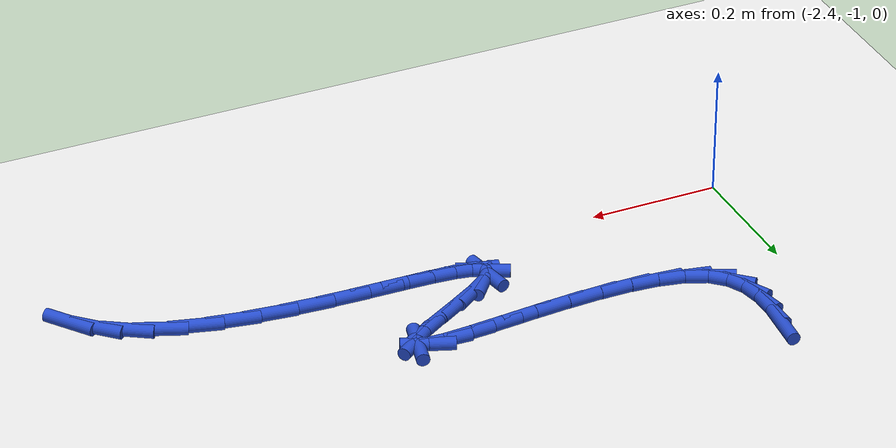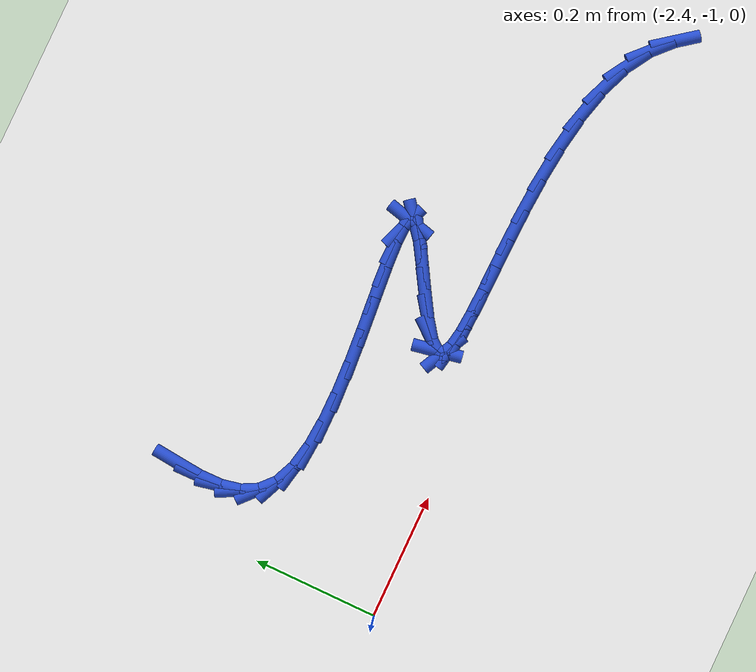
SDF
<sdf version="1.6">
 <world name="default">
  <model name="ground_plane">
   <static>1</static>
   <link name="link">
    <collision name="collision">
     <geometry><plane><normal>0 0 1</normal><size>100 100</size></plane></geometry>
     <surface><friction><ode><mu>100</mu><mu2>50</mu2></ode></friction></surface>
    </collision>
    <visual name="visual">
     <cast_shadows>0</cast_shadows>
     <geometry><plane><normal>0 0 1</normal><size>100 100</size></plane></geometry>
     <material>
      <script><uri>file://media/materials/scripts/gazebo.material</uri><name>Gazebo/WhiteGlow</name></script>
     </material>
    </visual>
   </link>
  </model>
  <model name="line">
   <link name="link_135">
    <pose>-2.313332444280192 -0.624526575835953 0.01 0 1.57 1.4715285721684925</pose>
    <collision name="collision">
     <geometry><cylinder><radius>0.01</radius><length>0.08</length></cylinder></geometry>
    </collision>
    <visual name="visual">
     <material>
      <script><name>Gazebo/Blue</name><uri>file://media/materials/scripts/gazebo.material</uri></script>
     </material>
     <geometry><cylinder><radius>0.01</radius><length>0.08</length></cylinder></geometry>
    </visual>
   </link>
   <link name="link_136">
    <pose>-2.317282390043679 -0.6641866132473935 0.01 0 1.57 -1.5585129872402295</pose>
    <collision name="collision">
     <geometry><cylinder><radius>0.01</radius><length>0.08</length></cylinder></geometry>
    </collision>
    <visual name="visual">
     <material>
      <script><name>Gazebo/Blue</name><uri>file://media/materials/scripts/gazebo.material</uri></script>
     </material>
     <geometry><cylinder><radius>0.01</radius><length>0.08</length></cylinder></geometry>
    </visual>
   </link>
   <link name="link_137">
    <pose>-2.3168442556069806 -0.6998538191585357 0.01 0 1.57 -1.3720342062678508</pose>
    <collision name="collision">
     <geometry><cylinder><radius>0.01</radius><length>0.08</length></cylinder></geometry>
    </collision>
    <visual name="visual">
     <material>
      <script><name>Gazebo/Blue</name><uri>file://media/materials/scripts/gazebo.material</uri></script>
     </material>
     <geometry><cylinder><radius>0.01</radius><length>0.08</length></cylinder></geometry>
    </visual>
   </link>
   <link name="link_138">
    <pose>-2.310577899554197 -0.7309644630163405 0.01 0 1.57 -1.090679475472012</pose>
    <collision name="collision">
     <geometry><cylinder><radius>0.01</radius><length>0.08</length></cylinder></geometry>
    </collision>
    <visual name="visual">
     <material>
      <script><name>Gazebo/Blue</name><uri>file://media/materials/scripts/gazebo.material</uri></script>
     </material>
     <geometry><cylinder><radius>0.01</radius><length>0.08</length></cylinder></geometry>
    </visual>
   </link>
   <link name="link_139">
    <pose>-2.297043180469428 -0.7569548142677688 0.01 0 1.57 -0.7399086299477183</pose>
    <collision name="collision">
     <geometry><cylinder><radius>0.01</radius><length>0.08</length></cylinder></geometry>
    </collision>
    <visual name="visual">
     <material>
      <script><name>Gazebo/Blue</name><uri>file://media/materials/scripts/gazebo.material</uri></script>
     </material>
     <geometry><cylinder><radius>0.01</radius><length>0.08</length></cylinder></geometry>
    </visual>
   </link>
   <link name="link_140">
    <pose>-2.274799956936774 -0.777261142359782 0.01 0 1.57 -0.4125380184670365</pose>
    <collision name="collision">
     <geometry><cylinder><radius>0.01</radius><length>0.08</length></cylinder></geometry>
    </collision>
    <visual name="visual">
     <material>
      <script><name>Gazebo/Blue</name><uri>file://media/materials/scripts/gazebo.material</uri></script>
     </material>
     <geometry><cylinder><radius>0.01</radius><length>0.08</length></cylinder></geometry>
    </visual>
   </link>
   <link name="link_141">
    <pose>-2.2425451839247956 -0.7913775084188056 0.01 0 1.57 -0.19766777340535605</pose>
    <collision name="collision">
     <geometry><cylinder><radius>0.01</radius><length>0.08</length></cylinder></geometry>
    </collision>
    <visual name="visual">
     <material>
      <script><name>Gazebo/Blue</name><uri>file://media/materials/scripts/gazebo.material</uri></script>
     </material>
     <geometry><cylinder><radius>0.01</radius><length>0.08</length></cylinder></geometry>
    </visual>
   </link>
   <link name="link_142">
    <pose>-2.2010756780846825 -0.7996831503304098 0.01 0 1.57 -0.07378265495437752</pose>
    <collision name="collision">
     <geometry><cylinder><radius>0.01</radius><length>0.08</length></cylinder></geometry>
    </collision>
    <visual name="visual">
     <material>
      <script><name>Gazebo/Blue</name><uri>file://media/materials/scripts/gazebo.material</uri></script>
     </material>
     <geometry><cylinder><radius>0.01</radius><length>0.08</length></cylinder></geometry>
    </visual>
   </link>
   <link name="link_143">
    <pose>-2.1528299003191824 -0.8032493255309174 0.01 0 1.57 0.0015913461508468127</pose>
    <collision name="collision">
     <geometry><cylinder><radius>0.01</radius><length>0.08</length></cylinder></geometry>
    </collision>
    <visual name="visual">
     <material>
      <script><name>Gazebo/Blue</name><uri>file://media/materials/scripts/gazebo.material</uri></script>
     </material>
     <geometry><cylinder><radius>0.01</radius><length>0.08</length></cylinder></geometry>
    </visual>
   </link>
   <link name="link_144">
    <pose>-2.1002900199456964 -0.8031657163239423 0.01 0 1.57 0.0486024136331984</pose>
    <collision name="collision">
     <geometry><cylinder><radius>0.01</radius><length>0.08</length></cylinder></geometry>
    </collision>
    <visual name="visual">
     <material>
      <script><name>Gazebo/Blue</name><uri>file://media/materials/scripts/gazebo.material</uri></script>
     </material>
     <geometry><cylinder><radius>0.01</radius><length>0.08</length></cylinder></geometry>
    </visual>
   </link>
   <link name="link_145">
    <pose>-2.0459382062816287 -0.8005220050130978 0.01 0 1.57 0.07649001044914476</pose>
    <collision name="collision">
     <geometry><cylinder><radius>0.01</radius><length>0.08</length></cylinder></geometry>
    </collision>
    <visual name="visual">
     <material>
      <script><name>Gazebo/Blue</name><uri>file://media/materials/scripts/gazebo.material</uri></script>
     </material>
     <geometry><cylinder><radius>0.01</radius><length>0.08</length></cylinder></geometry>
    </visual>
   </link>
   <link name="link_146">
    <pose>-1.9922566286443804 -0.7964078739019971 0.01 0 1.57 0.08872237924633167</pose>
    <collision name="collision">
     <geometry><cylinder><radius>0.01</radius><length>0.08</length></cylinder></geometry>
    </collision>
    <visual name="visual">
     <material>
      <script><name>Gazebo/Blue</name><uri>file://media/materials/scripts/gazebo.material</uri></script>
     </material>
     <geometry><cylinder><radius>0.01</radius><length>0.08</length></cylinder></geometry>
    </visual>
   </link>
   <link name="link_147">
    <pose>-1.9417274563513525 -0.7919130052942539 0.01 0 1.57 0.08413011104458723</pose>
    <collision name="collision">
     <geometry><cylinder><radius>0.01</radius><length>0.08</length></cylinder></geometry>
    </collision>
    <visual name="visual">
     <material>
      <script><name>Gazebo/Blue</name><uri>file://media/materials/scripts/gazebo.material</uri></script>
     </material>
     <geometry><cylinder><radius>0.01</radius><length>0.08</length></cylinder></geometry>
    </visual>
   </link>
   <link name="link_148">
    <pose>-1.8968328587199466 -0.7881270814934815 0.01 0 1.57 0.05398264734781743</pose>
    <collision name="collision">
     <geometry><cylinder><radius>0.01</radius><length>0.08</length></cylinder></geometry>
    </collision>
    <visual name="visual">
     <material>
      <script><name>Gazebo/Blue</name><uri>file://media/materials/scripts/gazebo.material</uri></script>
     </material>
     <geometry><cylinder><radius>0.01</radius><length>0.08</length></cylinder></geometry>
    </visual>
   </link>
   <link name="link_149">
    <pose>-1.8600550050675664 -0.7861397848032935 0.01 0 1.57 -0.034403883273786594</pose>
    <collision name="collision">
     <geometry><cylinder><radius>0.01</radius><length>0.08</length></cylinder></geometry>
    </collision>
    <visual name="visual">
     <material>
      <script><name>Gazebo/Blue</name><uri>file://media/materials/scripts/gazebo.material</uri></script>
     </material>
     <geometry><cylinder><radius>0.01</radius><length>0.08</length></cylinder></geometry>
    </visual>
   </link>
   <link name="link_150">
    <pose>-1.8338760647116126 -0.7870407975273032 0.01 0 1.57 -0.35658060540000597</pose>
    <collision name="collision">
     <geometry><cylinder><radius>0.01</radius><length>0.08</length></cylinder></geometry>
    </collision>
    <visual name="visual">
     <material>
      <script><name>Gazebo/Blue</name><uri>file://media/materials/scripts/gazebo.material</uri></script>
     </material>
     <geometry><cylinder><radius>0.01</radius><length>0.08</length></cylinder></geometry>
    </visual>
   </link>
   <link name="link_151">
    <pose>-1.820778206969488 -0.7919198019691243 0.01 0 1.57 1.32783180203155</pose>
    <collision name="collision">
     <geometry><cylinder><radius>0.01</radius><length>0.08</length></cylinder></geometry>
    </collision>
    <visual name="visual">
     <material>
      <script><name>Gazebo/Blue</name><uri>file://media/materials/scripts/gazebo.material</uri></script>
     </material>
     <geometry><cylinder><radius>0.01</radius><length>0.08</length></cylinder></geometry>
    </visual>
   </link>
   <link name="link_152">
    <pose>-1.8232436011585929 -0.8018664804323696 0.01 0 1.57 0.6772538347963921</pose>
    <collision name="collision">
     <geometry><cylinder><radius>0.01</radius><length>0.08</length></cylinder></geometry>
    </collision>
    <visual name="visual">
     <material>
      <script><name>Gazebo/Blue</name><uri>file://media/materials/scripts/gazebo.material</uri></script>
     </material>
     <geometry><cylinder><radius>0.01</radius><length>0.08</length></cylinder></geometry>
    </visual>
   </link>
   <link name="link_153">
    <pose>-1.842883089290723 -0.8176591713011131 0.01 0 1.57 0.5599590984420559</pose>
    <collision name="collision">
     <geometry><cylinder><radius>0.01</radius><length>0.08</length></cylinder></geometry>
    </collision>
    <visual name="visual">
     <material>
      <script><name>Gazebo/Blue</name><uri>file://media/materials/scripts/gazebo.material</uri></script>
     </material>
     <geometry><cylinder><radius>0.01</radius><length>0.08</length></cylinder></geometry>
    </visual>
   </link>
   <link name="link_154">
    <pose>-1.8751089866170638 -0.837861346508434 0.01 0 1.57 0.5343711091059405</pose>
    <collision name="collision">
     <geometry><cylinder><radius>0.01</radius><length>0.08</length></cylinder></geometry>
    </collision>
    <visual name="visual">
     <material>
      <script><name>Gazebo/Blue</name><uri>file://media/materials/scripts/gazebo.material</uri></script>
     </material>
     <geometry><cylinder><radius>0.01</radius><length>0.08</length></cylinder></geometry>
    </visual>
   </link>
   <link name="link_155">
    <pose>-1.912647036465626 -0.860076508263859 0.01 0 1.57 0.5504621744991894</pose>
    <collision name="collision">
     <geometry><cylinder><radius>0.01</radius><length>0.08</length></cylinder></geometry>
    </collision>
    <visual name="visual">
     <material>
      <script><name>Gazebo/Blue</name><uri>file://media/materials/scripts/gazebo.material</uri></script>
     </material>
     <geometry><cylinder><radius>0.01</radius><length>0.08</length></cylinder></geometry>
    </visual>
   </link>
   <link name="link_156">
    <pose>-1.9482121538415504 -0.8819042895850936 0.01 0 1.57 0.6264678349140983</pose>
    <collision name="collision">
     <geometry><cylinder><radius>0.01</radius><length>0.08</length></cylinder></geometry>
    </collision>
    <visual name="visual">
     <material>
      <script><name>Gazebo/Blue</name><uri>file://media/materials/scripts/gazebo.material</uri></script>
     </material>
     <geometry><cylinder><radius>0.01</radius><length>0.08</length></cylinder></geometry>
    </visual>
   </link>
   <link name="link_157">
    <pose>-1.97452219120084 -0.9009453558863882 0.01 0 1.57 0.8878778848422128</pose>
    <collision name="collision">
     <geometry><cylinder><radius>0.01</radius><length>0.08</length></cylinder></geometry>
    </collision>
    <visual name="visual">
     <material>
      <script><name>Gazebo/Blue</name><uri>file://media/materials/scripts/gazebo.material</uri></script>
     </material>
     <geometry><cylinder><radius>0.01</radius><length>0.08</length></cylinder></geometry>
    </visual>
   </link>
   <link name="link_158">
    <pose>-1.9863931228846918 -0.9155377785462576 0.01 0 1.57 -1.3858409886159635</pose>
    <collision name="collision">
     <geometry><cylinder><radius>0.01</radius><length>0.08</length></cylinder></geometry>
    </collision>
    <visual name="visual">
     <material>
      <script><name>Gazebo/Blue</name><uri>file://media/materials/scripts/gazebo.material</uri></script>
     </material>
     <geometry><cylinder><radius>0.01</radius><length>0.08</length></cylinder></geometry>
    </visual>
   </link>
   <link name="link_159">
    <pose>-1.9844258308698532 -0.9260527927089995 0.01 0 1.57 -0.4663558459541009</pose>
    <collision name="collision">
     <geometry><cylinder><radius>0.01</radius><length>0.08</length></cylinder></geometry>
    </collision>
    <visual name="visual">
     <material>
      <script><name>Gazebo/Blue</name><uri>file://media/materials/scripts/gazebo.material</uri></script>
     </material>
     <geometry><cylinder><radius>0.01</radius><length>0.08</length></cylinder></geometry>
    </visual>
   </link>
   <link name="link_160">
    <pose>-1.970209695991799 -0.9332090513497058 0.01 0 1.57 -0.1795935557945374</pose>
    <collision name="collision">
     <geometry><cylinder><radius>0.01</radius><length>0.08</length></cylinder></geometry>
    </collision>
    <visual name="visual">
     <material>
      <script><name>Gazebo/Blue</name><uri>file://media/materials/scripts/gazebo.material</uri></script>
     </material>
     <geometry><cylinder><radius>0.01</radius><length>0.08</length></cylinder></geometry>
    </visual>
   </link>
   <link name="link_161">
    <pose>-1.9453340990860035 -0.9377252074434672 0.01 0 1.57 -0.07628867693549232</pose>
    <collision name="collision">
     <geometry><cylinder><radius>0.01</radius><length>0.08</length></cylinder></geometry>
    </collision>
    <visual name="visual">
     <material>
      <script><name>Gazebo/Blue</name><uri>file://media/materials/scripts/gazebo.material</uri></script>
     </material>
     <geometry><cylinder><radius>0.01</radius><length>0.08</length></cylinder></geometry>
    </visual>
   </link>
   <link name="link_162">
    <pose>-1.9113884209879413 -0.9403199139653757 0.01 0 1.57 -0.03358696898801016</pose>
    <collision name="collision">
     <geometry><cylinder><radius>0.01</radius><length>0.08</length></cylinder></geometry>
    </collision>
    <visual name="visual">
     <material>
      <script><name>Gazebo/Blue</name><uri>file://media/materials/scripts/gazebo.material</uri></script>
     </material>
     <geometry><cylinder><radius>0.01</radius><length>0.08</length></cylinder></geometry>
    </visual>
   </link>
   <link name="link_163">
    <pose>-1.869962042533087 -0.9417118238905219 0.01 0 1.57 -0.019182145383349156</pose>
    <collision name="collision">
     <geometry><cylinder><radius>0.01</radius><length>0.08</length></cylinder></geometry>
    </collision>
    <visual name="visual">
     <material>
      <script><name>Gazebo/Blue</name><uri>file://media/materials/scripts/gazebo.material</uri></script>
     </material>
     <geometry><cylinder><radius>0.01</radius><length>0.08</length></cylinder></geometry>
    </visual>
   </link>
   <link name="link_164">
    <pose>-1.8226443445569163 -0.9426195901939972 0.01 0 1.57 -0.02212509300410652</pose>
    <collision name="collision">
     <geometry><cylinder><radius>0.01</radius><length>0.08</length></cylinder></geometry>
    </collision>
    <visual name="visual">
     <material>
      <script><name>Gazebo/Blue</name><uri>file://media/materials/scripts/gazebo.material</uri></script>
     </material>
     <geometry><cylinder><radius>0.01</radius><length>0.08</length></cylinder></geometry>
    </visual>
   </link>
   <link name="link_165">
    <pose>-1.7710247078949024 -0.9437618658508932 0.01 0 1.57 -0.03854804678291789</pose>
    <collision name="collision">
     <geometry><cylinder><radius>0.01</radius><length>0.08</length></cylinder></geometry>
    </collision>
    <visual name="visual">
     <material>
      <script><name>Gazebo/Blue</name><uri>file://media/materials/scripts/gazebo.material</uri></script>
     </material>
     <geometry><cylinder><radius>0.01</radius><length>0.08</length></cylinder></geometry>
    </visual>
   </link>
   <link name="link_166">
    <pose>-1.7166925133825193 -0.9458573038363011 0.01 0 1.57 -0.06782885069574353</pose>
    <collision name="collision">
     <geometry><cylinder><radius>0.01</radius><length>0.08</length></cylinder></geometry>
    </collision>
    <visual name="visual">
     <material>
      <script><name>Gazebo/Blue</name><uri>file://media/materials/scripts/gazebo.material</uri></script>
     </material>
     <geometry><cylinder><radius>0.01</radius><length>0.08</length></cylinder></geometry>
    </visual>
   </link>
   <link name="link_167">
    <pose>-1.6612371418552434 -0.9496245571253117 0.01 0 1.57 -0.11151605264821175</pose>
    <collision name="collision">
     <geometry><cylinder><radius>0.01</radius><length>0.08</length></cylinder></geometry>
    </collision>
    <visual name="visual">
     <material>
      <script><name>Gazebo/Blue</name><uri>file://media/materials/scripts/gazebo.material</uri></script>
     </material>
     <geometry><cylinder><radius>0.01</radius><length>0.08</length></cylinder></geometry>
    </visual>
   </link>
   <link name="link_168">
    <pose>-1.6062479741485491 -0.9557822786930167 0.01 0 1.57 -0.17330919444799586</pose>
    <collision name="collision">
     <geometry><cylinder><radius>0.01</radius><length>0.08</length></cylinder></geometry>
    </collision>
    <visual name="visual">
     <material>
      <script><name>Gazebo/Blue</name><uri>file://media/materials/scripts/gazebo.material</uri></script>
     </material>
     <geometry><cylinder><radius>0.01</radius><length>0.08</length></cylinder></geometry>
    </visual>
   </link>
   <link name="link_169">
    <pose>-1.55331439109791 -0.9650491215145073 0.01 0 1.57 -0.2596737482085116</pose>
    <collision name="collision">
     <geometry><cylinder><radius>0.01</radius><length>0.08</length></cylinder></geometry>
    </collision>
    <visual name="visual">
     <material>
      <script><name>Gazebo/Blue</name><uri>file://media/materials/scripts/gazebo.material</uri></script>
     </material>
     <geometry><cylinder><radius>0.01</radius><length>0.08</length></cylinder></geometry>
    </visual>
   </link>
   <link name="link_170">
    <pose>-1.5040257735387996 -0.978143738564875 0.01 0 1.57 -0.38088468859622665</pose>
    <collision name="collision">
     <geometry><cylinder><radius>0.01</radius><length>0.08</length></cylinder></geometry>
    </collision>
    <visual name="visual">
     <material>
      <script><name>Gazebo/Blue</name><uri>file://media/materials/scripts/gazebo.material</uri></script>
     </material>
     <geometry><cylinder><radius>0.01</radius><length>0.08</length></cylinder></geometry>
    </visual>
   </link>
   <link name="link_171">
    <pose>-1.4599715023066957 -0.9957847828192108 0.01 0 1.57 -0.5515341307924776</pose>
    <collision name="collision">
     <geometry><cylinder><radius>0.01</radius><length>0.08</length></cylinder></geometry>
    </collision>
    <visual name="visual">
     <material>
      <script><name>Gazebo/Blue</name><uri>file://media/materials/scripts/gazebo.material</uri></script>
     </material>
     <geometry><cylinder><radius>0.01</radius><length>0.08</length></cylinder></geometry>
    </visual>
   </link>
   <link name="link_172">
    <pose>-1.4227400759031321 -1.0186902268695155 0.01 0 1.57 -0.7591248860046618</pose>
    <collision name="collision">
     <geometry><cylinder><radius>0.01</radius><length>0.08</length></cylinder></geometry>
    </collision>
    <visual name="visual">
     <material>
      <script><name>Gazebo/Blue</name><uri>file://media/materials/scripts/gazebo.material</uri></script>
     </material>
     <geometry><cylinder><radius>0.01</radius><length>0.08</length></cylinder></geometry>
    </visual>
   </link>
   <link name="link_173">
    <pose>-1.3930224483978848 -1.0468859311411522 0.01 0 1.57 -0.9179353785460876</pose>
    <collision name="collision">
     <geometry><cylinder><radius>0.01</radius><length>0.08</length></cylinder></geometry>
    </collision>
    <visual name="visual">
     <material>
      <script><name>Gazebo/Blue</name><uri>file://media/materials/scripts/gazebo.material</uri></script>
     </material>
     <geometry><cylinder><radius>0.01</radius><length>0.08</length></cylinder></geometry>
    </visual>
   </link>
  </model>
 </world>
</sdf>
